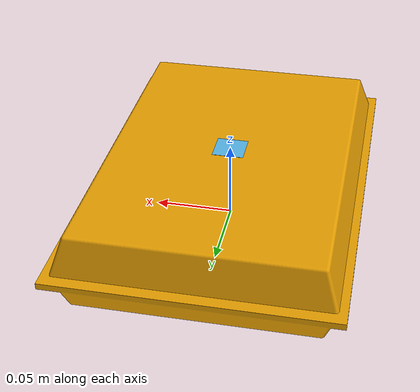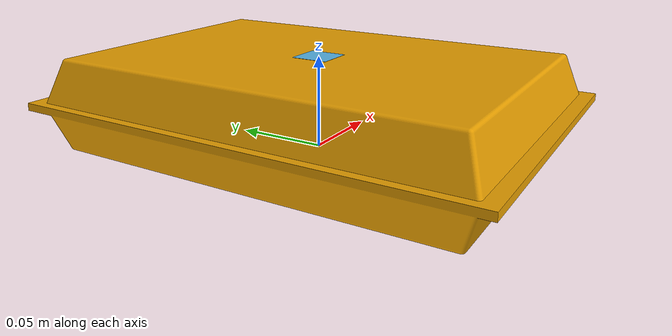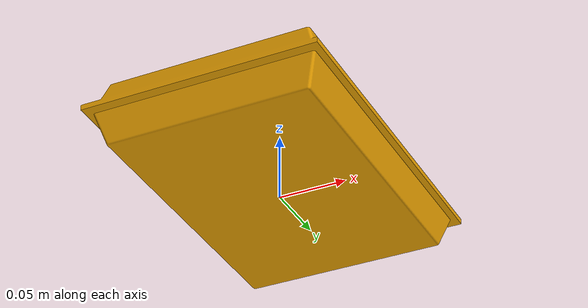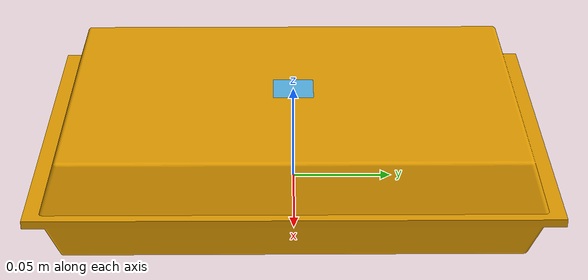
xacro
<?xml version="1.0"?>
<robot xmlns:xacro="http://www.ros.org/wiki/xacro" name="bento">
  <xacro:arg name="use_ar_marker" default="true"/>
  <xacro:arg name="marker_id" default="0"/>
  <xacro:macro name="box_inertial" params="mass x y z *origin">
    <inertial>
      <mass value="${mass}" />
      <xacro:insert_block name="origin" />
      <inertia  ixx="${mass*(y*y+z*z)/12}" ixy = "0" ixz = "0"
                iyy="${mass*(x*x+z*z)/12}" iyz = "0"
                izz="${mass*(x*x+y*y)/12}" />
    </inertial>
  </xacro:macro>
  <xacro:macro name="bento">
    <link name="bento">
      <inertial>
        <origin xyz="0 0 0"/>
        <mass value="0.55"/>
        <inertia ixx="1" ixy="0" ixz="0" iyy="1" iyz="0" izz="1"/>
      </inertial>
      <collision>
        <origin xyz="0 0 0"/>
        <geometry>
          <mesh filename="package://fcsc_description/mesh/bento.stl" scale="1 1 1"/>
        </geometry>
      </collision>
      <visual>
        <origin xyz="0 0 0"/>
        <geometry>
          <mesh filename="package://fcsc_description/mesh/bento.stl" scale="1 1 1"/>
        </geometry>
      </visual>
    </link>
    <gazebo reference="bento">
      <mu1 value="1000000" />
      <mu2 value="1000000" />
    </gazebo>

    <xacro:if value="$(arg use_ar_marker)">
      <link name="ar_marker">
        <xacro:box_inertial mass="0.0000001" x="0.02" y="0.02" z="0.0001">
          <origin xyz="0 0 0" rpy="0 0 1.5707"/>
        </xacro:box_inertial>
        <collision>
          <origin xyz="0 0 0" rpy="0 0 1.5707"/>
          <geometry>
            <box size="0.02 0.02 0.0001"/>
          </geometry>
        </collision>
        <visual>
          <origin xyz="0 0 0" rpy="0 0 1.5707"/>
          <geometry>
            <box size="0.02 0.02 0.0001"/>
          </geometry>
          <material name="ar_marker_0">
            <texture filename="package://fcsc_description/image/MarkerData_0.png"/>
          </material>
        </visual>
      </link>
      <gazebo reference="ar_marker">
        <material>ar_marker_$(arg marker_id)</material>
      </gazebo>
      <joint name="ar" type="fixed">
        <parent link="bento"/>
        <child link="ar_marker"/>
        <origin xyz="0 0 0.0501" rpy="0 0 0"/>
      </joint>
    </xacro:if>
  </xacro:macro>
  <xacro:bento/>
</robot>
